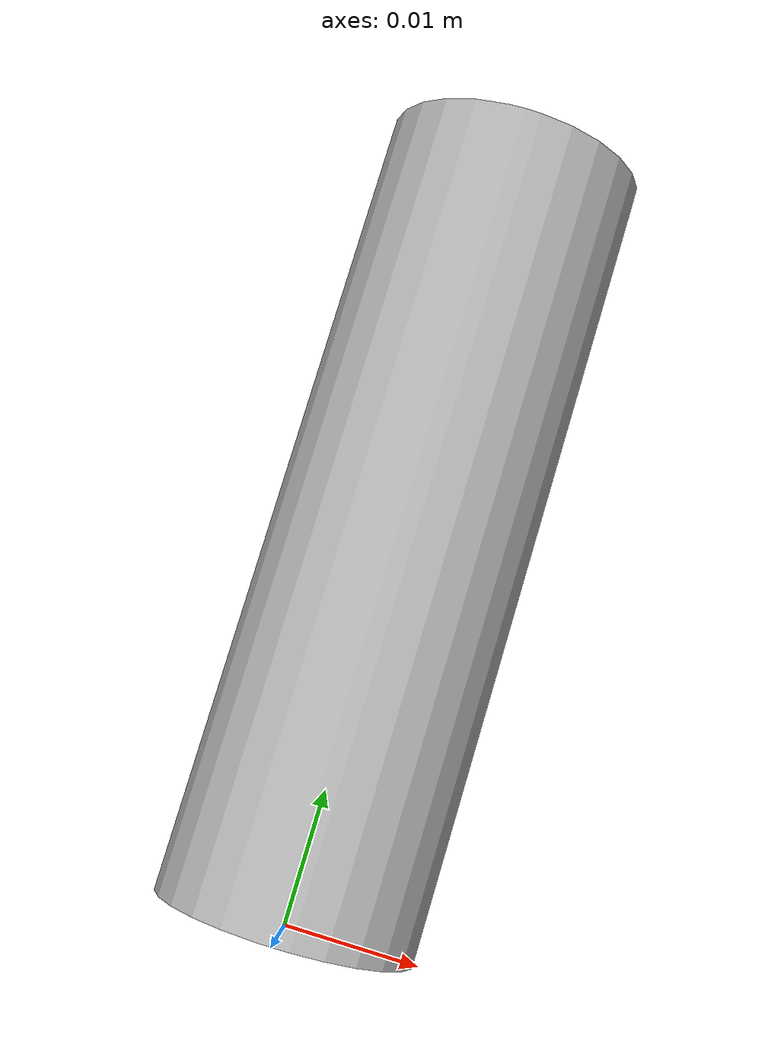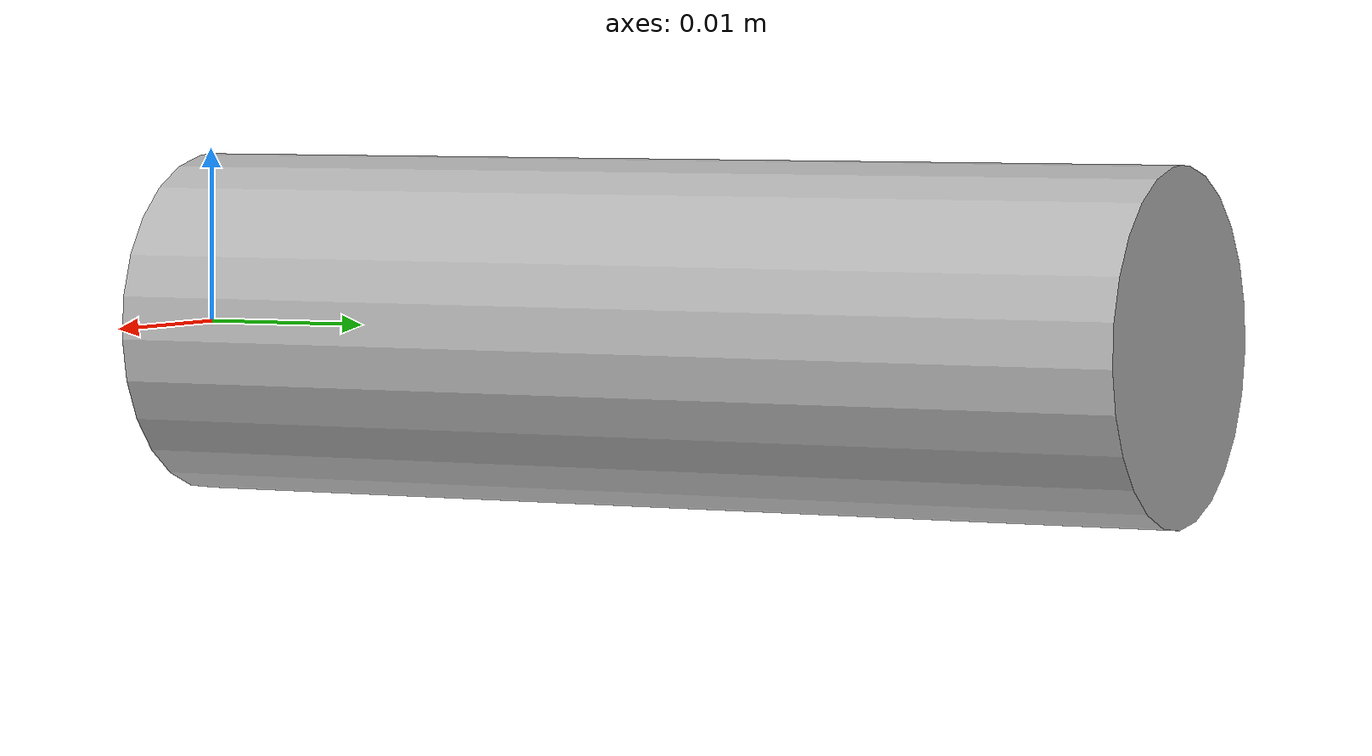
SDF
<?xml version="1.0" encoding="UTF-8"?>
<sdf version="1.4">
   <model name="peg_model">
      <static>false</static>
      <link name="peg_link">
         <pose>0 0 0 0 0 0</pose>
         <inertial>
            <mass>1</mass>
            <pose>0 0 0 0 0 0</pose>
            <inertia>
               <ixx>0.1</ixx>
               <ixy>0</ixy>
               <ixz>0</ixz>
               <iyy>0.1</iyy>
               <iyz>0</iyz>
               <izz>0.1</izz>
            </inertia>
         </inertial>
         <collision name="peg_collision">
            <pose>0 0 0 0 0 0</pose>
            <geometry>
               <mesh>
                  <uri>model://mobile_dual_arm/scene/meshes/peg_v2.SLDPRT.stl</uri>
               </mesh>
            </geometry>
            <surface>
               <bounce>
                  <restitution_coefficient>0</restitution_coefficient>
               </bounce>
               <friction>
                  <ode>
                     <mu>0.01</mu>
                     <mu2>0.01</mu2>
                  </ode>
               </friction>
            </surface>
         </collision>
         <visual name="peg_visual">
            <pose>0 0 0 0 0 0</pose>
            <geometry>
               <mesh>
                  <uri>model://mobile_dual_arm/scene/meshes/peg_v2.SLDPRT.stl</uri>
               </mesh>
            </geometry>
         </visual>
         <velocity_decay>
            <linear>0</linear>
            <angular>0</angular>
         </velocity_decay>
         <self_collide>0</self_collide>
         <gravity>1</gravity>
      </link>
   </model>
</sdf>
